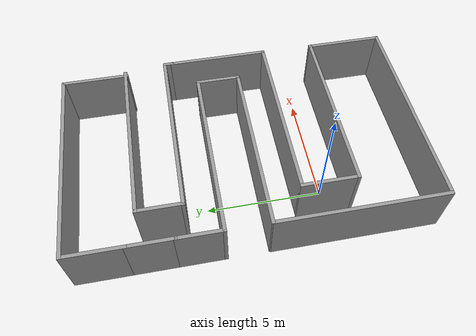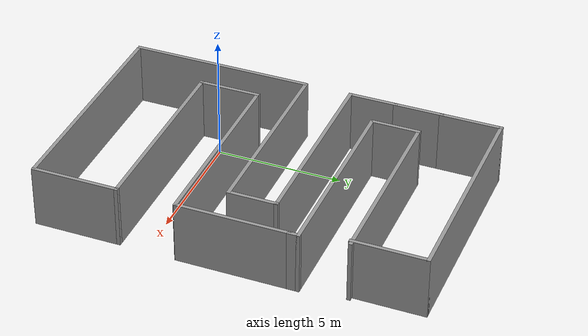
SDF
<?xml version='1.0'?>
<sdf version='1.7'>
  <model name='paper4'>
    <pose>2.2295 3.07315 0 0 -0 0</pose>
    <link name='Wall_0'>
      <collision name='Wall_0_Collision'>
        <geometry>
          <box>
            <size>9 0.15 2.5</size>
          </box>
        </geometry>
        <pose>0 0 1.25 0 -0 0</pose>
      </collision>
      <visual name='Wall_0_Visual'>
        <pose>0 0 1.25 0 -0 0</pose>
        <geometry>
          <box>
            <size>9 0.15 2.5</size>
          </box>
        </geometry>
        <material>
          <script>
            <uri>file://media/materials/scripts/gazebo.material</uri>
            <name>Gazebo/Grey</name>
          </script>
          <ambient>1 1 1 1</ambient>
        </material>
        <meta>
          <layer>0</layer>
        </meta>
      </visual>
      <pose>0.055503 -7.53315 0 0 -0 0</pose>
    </link>
    <link name='Wall_1'>
      <collision name='Wall_1_Collision'>
        <geometry>
          <box>
            <size>3.5 0.15 2.5</size>
          </box>
        </geometry>
        <pose>0 0 1.25 0 -0 0</pose>
      </collision>
      <visual name='Wall_1_Visual'>
        <pose>0 0 1.25 0 -0 0</pose>
        <geometry>
          <box>
            <size>3.5 0.15 2.5</size>
          </box>
        </geometry>
        <material>
          <script>
            <uri>file://media/materials/scripts/gazebo.material</uri>
            <name>Gazebo/Grey</name>
          </script>
          <ambient>1 1 1 1</ambient>
        </material>
        <meta>
          <layer>0</layer>
        </meta>
      </visual>
      <pose>4.4805 -5.85815 0 0 -0 1.5708</pose>
    </link>
    <link name='Wall_17'>
      <collision name='Wall_17_Collision'>
        <geometry>
          <box>
            <size>2.5 0.15 2.5</size>
          </box>
        </geometry>
        <pose>0 0 1.25 0 -0 0</pose>
      </collision>
      <visual name='Wall_17_Visual'>
        <pose>0 0 1.25 0 -0 0</pose>
        <geometry>
          <box>
            <size>2.5 0.15 2.5</size>
          </box>
        </geometry>
        <material>
          <script>
            <uri>file://media/materials/scripts/gazebo.material</uri>
            <name>Gazebo/Grey</name>
          </script>
          <ambient>1 1 1 1</ambient>
        </material>
        <meta>
          <layer>0</layer>
        </meta>
      </visual>
      <pose>-3.1195 -3.00815 0 0 -0 1.5708</pose>
    </link>
    <link name='Wall_18'>
      <collision name='Wall_18_Collision'>
        <geometry>
          <box>
            <size>7.78042 0.15 2.5</size>
          </box>
        </geometry>
        <pose>0 0 1.25 0 -0 0</pose>
      </collision>
      <visual name='Wall_18_Visual'>
        <pose>0 0 1.25 0 -0 0</pose>
        <geometry>
          <box>
            <size>7.78042 0.15 2.5</size>
          </box>
        </geometry>
        <material>
          <script>
            <uri>file://media/materials/scripts/gazebo.material</uri>
            <name>Gazebo/Grey</name>
          </script>
          <ambient>1 1 1 1</ambient>
        </material>
        <meta>
          <layer>0</layer>
        </meta>
      </visual>
      <pose>0.695712 -1.83315 0 0 -0 0</pose>
    </link>
    <link name='Wall_19'>
      <collision name='Wall_19_Collision'>
        <geometry>
          <box>
            <size>4.5 0.15 2.5</size>
          </box>
        </geometry>
        <pose>0 0 1.25 0 -0 0</pose>
      </collision>
      <visual name='Wall_19_Visual'>
        <pose>0 0 1.25 0 -0 0</pose>
        <geometry>
          <box>
            <size>4.5 0.15 2.5</size>
          </box>
        </geometry>
        <material>
          <script>
            <uri>file://media/materials/scripts/gazebo.material</uri>
            <name>Gazebo/Grey</name>
          </script>
          <ambient>1 1 1 1</ambient>
        </material>
        <meta>
          <layer>0</layer>
        </meta>
      </visual>
      <pose>4.51092 0.35706 0 0 -0 1.5708</pose>
    </link>
    <link name='Wall_2'>
      <collision name='Wall_2_Collision'>
        <geometry>
          <box>
            <size>7.75 0.15 2.5</size>
          </box>
        </geometry>
        <pose>0 0 1.25 0 -0 0</pose>
      </collision>
      <visual name='Wall_2_Visual'>
        <pose>0 0 1.25 0 -0 0</pose>
        <geometry>
          <box>
            <size>7.75 0.15 2.5</size>
          </box>
        </geometry>
        <material>
          <script>
            <uri>file://media/materials/scripts/gazebo.material</uri>
            <name>Gazebo/Grey</name>
          </script>
          <ambient>1 1 1 1</ambient>
        </material>
        <meta>
          <layer>0</layer>
        </meta>
      </visual>
      <pose>0.680503 -4.18315 0 0 -0 3.14159</pose>
    </link>
    <link name='Wall_28'>
      <collision name='Wall_28_Collision'>
        <geometry>
          <box>
            <size>7.75 0.15 2.5</size>
          </box>
        </geometry>
        <pose>0 0 1.25 0 -0 0</pose>
      </collision>
      <visual name='Wall_28_Visual'>
        <pose>0 0 1.25 0 -0 0</pose>
        <geometry>
          <box>
            <size>7.75 0.15 2.5</size>
          </box>
        </geometry>
        <material>
          <script>
            <uri>file://media/materials/scripts/gazebo.material</uri>
            <name>Gazebo/Grey</name>
          </script>
          <ambient>1 1 1 1</ambient>
        </material>
        <meta>
          <layer>0</layer>
        </meta>
      </visual>
      <pose>-0.69652 -0.366851 0 0 -0 0</pose>
    </link>
    <link name='Wall_30'>
      <collision name='Wall_30_Collision'>
        <geometry>
          <box>
            <size>2 0.15 2.5</size>
          </box>
        </geometry>
        <pose>0 0 1.25 0 -0 0</pose>
      </collision>
      <visual name='Wall_30_Visual'>
        <pose>0 0 1.25 0 -0 0</pose>
        <geometry>
          <box>
            <size>2 0.15 2.5</size>
          </box>
        </geometry>
        <material>
          <script>
            <uri>file://media/materials/scripts/gazebo.material</uri>
            <name>Gazebo/Grey</name>
          </script>
          <ambient>1 1 1 1</ambient>
        </material>
        <meta>
          <layer>0</layer>
        </meta>
      </visual>
      <pose>3.10348 0.558149 0 0 -0 1.5708</pose>
    </link>
    <link name='Wall_32'>
      <collision name='Wall_32_Collision'>
        <geometry>
          <box>
            <size>0.5 0.15 2.5</size>
          </box>
        </geometry>
        <pose>0 0 1.25 0 -0 0</pose>
      </collision>
      <visual name='Wall_32_Visual'>
        <pose>0 0 1.25 0 -0 0</pose>
        <geometry>
          <box>
            <size>0.5 0.15 2.5</size>
          </box>
        </geometry>
        <material>
          <script>
            <uri>file://media/materials/scripts/gazebo.material</uri>
            <name>Gazebo/Grey</name>
          </script>
          <ambient>1 1 1 1</ambient>
        </material>
        <meta>
          <layer>0</layer>
        </meta>
      </visual>
      <pose>4.51092 2.70706 0 0 -0 1.5708</pose>
    </link>
    <link name='Wall_33'>
      <collision name='Wall_33_Collision'>
        <geometry>
          <box>
            <size>7.75 0.15 2.5</size>
          </box>
        </geometry>
        <pose>0 0 1.25 0 -0 0</pose>
      </collision>
      <visual name='Wall_33_Visual'>
        <pose>0 0 1.25 0 -0 0</pose>
        <geometry>
          <box>
            <size>7.75 0.15 2.5</size>
          </box>
        </geometry>
        <material>
          <script>
            <uri>file://media/materials/scripts/gazebo.material</uri>
            <name>Gazebo/Grey</name>
          </script>
          <ambient>1 1 1 1</ambient>
        </material>
        <meta>
          <layer>0</layer>
        </meta>
      </visual>
      <pose>0.71092 2.88206 0 0 -0 3.14159</pose>
    </link>
    <link name='Wall_34'>
      <collision name='Wall_34_Collision'>
        <geometry>
          <box>
            <size>2 0.15 2.5</size>
          </box>
        </geometry>
        <pose>0 0 1.25 0 -0 0</pose>
      </collision>
      <visual name='Wall_34_Visual'>
        <pose>0 0 1.25 0 -0 0</pose>
        <geometry>
          <box>
            <size>2 0.15 2.5</size>
          </box>
        </geometry>
        <material>
          <script>
            <uri>file://media/materials/scripts/gazebo.material</uri>
            <name>Gazebo/Grey</name>
          </script>
          <ambient>1 1 1 1</ambient>
        </material>
        <meta>
          <layer>0</layer>
        </meta>
      </visual>
      <pose>-3.08908 3.80706 0 0 -0 1.5708</pose>
    </link>
    <link name='Wall_36'>
      <collision name='Wall_36_Collision'>
        <geometry>
          <box>
            <size>7.75 0.15 2.5</size>
          </box>
        </geometry>
        <pose>0 0 1.25 0 -0 0</pose>
      </collision>
      <visual name='Wall_36_Visual'>
        <pose>0 0 1.25 0 -0 0</pose>
        <geometry>
          <box>
            <size>7.75 0.15 2.5</size>
          </box>
        </geometry>
        <material>
          <script>
            <uri>file://media/materials/scripts/gazebo.material</uri>
            <name>Gazebo/Grey</name>
          </script>
          <ambient>1 1 1 1</ambient>
        </material>
        <meta>
          <layer>0</layer>
        </meta>
      </visual>
      <pose>-0.69652 1.48315 0 0 -0 3.14159</pose>
    </link>
    <link name='Wall_37'>
      <collision name='Wall_37_Collision'>
        <geometry>
          <box>
            <size>2 0.15 2.5</size>
          </box>
        </geometry>
        <pose>0 0 1.25 0 -0 0</pose>
      </collision>
      <visual name='Wall_37_Visual'>
        <pose>0 0 1.25 0 -0 0</pose>
        <geometry>
          <box>
            <size>2 0.15 2.5</size>
          </box>
        </geometry>
        <material>
          <script>
            <uri>file://media/materials/scripts/gazebo.material</uri>
            <name>Gazebo/Grey</name>
          </script>
          <ambient>1 1 1 1</ambient>
        </material>
        <meta>
          <layer>0</layer>
        </meta>
      </visual>
      <pose>-4.49652 2.40815 0 0 -0 1.5708</pose>
    </link>
    <link name='Wall_39'>
      <collision name='Wall_39_Collision'>
        <geometry>
          <box>
            <size>2 0.15 2.5</size>
          </box>
        </geometry>
        <pose>0 0 1.25 0 -0 0</pose>
      </collision>
      <visual name='Wall_39_Visual'>
        <pose>0 0 1.25 0 -0 0</pose>
        <geometry>
          <box>
            <size>2 0.15 2.5</size>
          </box>
        </geometry>
        <material>
          <script>
            <uri>file://media/materials/scripts/gazebo.material</uri>
            <name>Gazebo/Grey</name>
          </script>
          <ambient>1 1 1 1</ambient>
        </material>
        <meta>
          <layer>0</layer>
        </meta>
      </visual>
      <pose>-4.49652 4.25815 0 0 -0 1.5708</pose>
    </link>
    <link name='Wall_43'>
      <collision name='Wall_43_Collision'>
        <geometry>
          <box>
            <size>7.50389 0.15 2.5</size>
          </box>
        </geometry>
        <pose>0 0 1.25 0 -0 0</pose>
      </collision>
      <visual name='Wall_43_Visual'>
        <pose>0 0 1.25 0 -0 0</pose>
        <geometry>
          <box>
            <size>7.50389 0.15 2.5</size>
          </box>
        </geometry>
        <material>
          <script>
            <uri>file://media/materials/scripts/gazebo.material</uri>
            <name>Gazebo/Grey</name>
          </script>
          <ambient>1 1 1 1</ambient>
        </material>
        <meta>
          <layer>0</layer>
        </meta>
      </visual>
      <pose>0.587865 4.73206 0 0 -0 0</pose>
    </link>

    <link name='Wall_67'>
      <collision name='Wall_67_Collision'>
        <geometry>
          <box>
            <size>2.5 0.15 2.5</size>
          </box>
        </geometry>
        <pose>0 0 1.25 0 -0 0</pose>
      </collision>
      <visual name='Wall_67_Visual'>
        <pose>0 0 1.25 0 -0 0</pose>
        <geometry>
          <box>
            <size>2.5 0.15 2.5</size>
          </box>
        </geometry>
        <material>
          <script>
            <uri>file://media/materials/scripts/gazebo.material</uri>
            <name>Gazebo/Grey</name>
          </script>
          <ambient>1 1 1 1</ambient>
        </material>
        <meta>
          <layer>0</layer>
        </meta>
      </visual>
      <pose>-4.49652 6.35815 0 0 -0 1.5708</pose>
    </link>
    <link name='Wall_68'>
      <collision name='Wall_68_Collision'>
        <geometry>
          <box>
            <size>8.75389 0.15 2.5</size>
          </box>
        </geometry>
        <pose>0 0 1.25 0 -0 0</pose>
      </collision>
      <visual name='Wall_68_Visual'>
        <pose>0 0 1.25 0 -0 0</pose>
        <geometry>
          <box>
            <size>8.75389 0.15 2.5</size>
          </box>
        </geometry>
        <material>
          <script>
            <uri>file://media/materials/scripts/gazebo.material</uri>
            <name>Gazebo/Grey</name>
          </script>
          <ambient>1 1 1 1</ambient>
        </material>
        <meta>
          <layer>0</layer>
        </meta>
      </visual>
      <pose>-0.194576 7.53315 0 0 -0 0</pose>
    </link>
    <link name='Wall_7'>
      <collision name='Wall_7_Collision'>
        <geometry>
          <box>
            <size>7.25 0.15 2.5</size>
          </box>
        </geometry>
        <pose>0 0 1.25 0 -0 0</pose>
      </collision>
      <visual name='Wall_7_Visual'>
        <pose>0 0 1.25 0 -0 0</pose>
        <geometry>
          <box>
            <size>7.25 0.15 2.5</size>
          </box>
        </geometry>
        <material>
          <script>
            <uri>file://media/materials/scripts/gazebo.material</uri>
            <name>Gazebo/Grey</name>
          </script>
          <ambient>1 1 1 1</ambient>
        </material>
        <meta>
          <layer>0</layer>
        </meta>
      </visual>
      <pose>-4.51092 -3.97253 0 0 -0 -1.5708</pose>
    </link>
    <link name='Wall_73'>
      <collision name='Wall_73_Collision'>
        <geometry>
          <box>
            <size>3 0.15 2.5</size>
          </box>
        </geometry>
        <pose>0 0 1.25 0 -0 0</pose>
      </collision>
      <visual name='Wall_73_Visual'>
        <pose>0 0 1.25 0 -0 0</pose>
        <geometry>
          <box>
            <size>3 0.15 2.5</size>
          </box>
        </geometry>
        <material>
          <script>
            <uri>file://media/materials/scripts/gazebo.material</uri>
            <name>Gazebo/Grey</name>
          </script>
          <ambient>1 1 1 1</ambient>
        </material>
        <meta>
          <layer>0</layer>
        </meta>
      </visual>
      <pose>4.10737 6.10815 0 0 -0 -1.5708</pose>
    </link>
    <static>1</static>
  </model>
</sdf>
